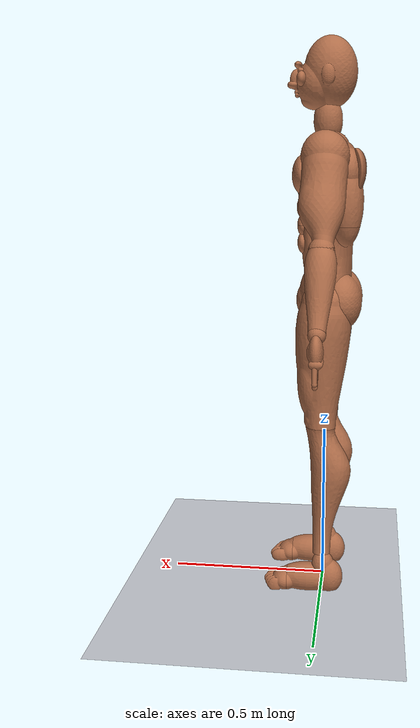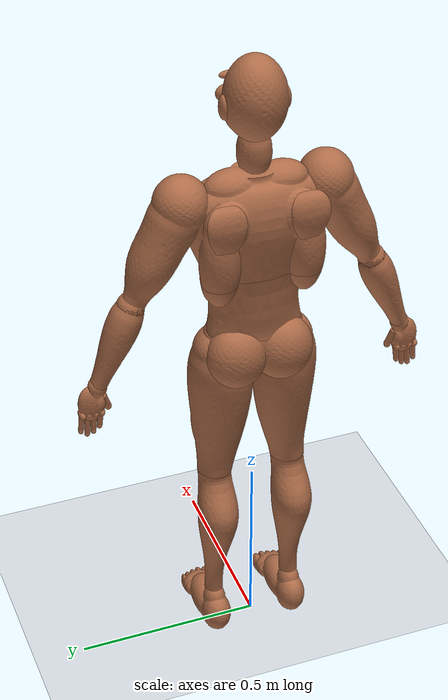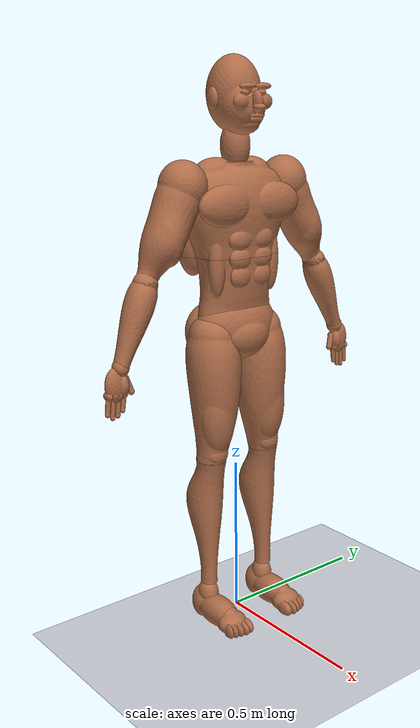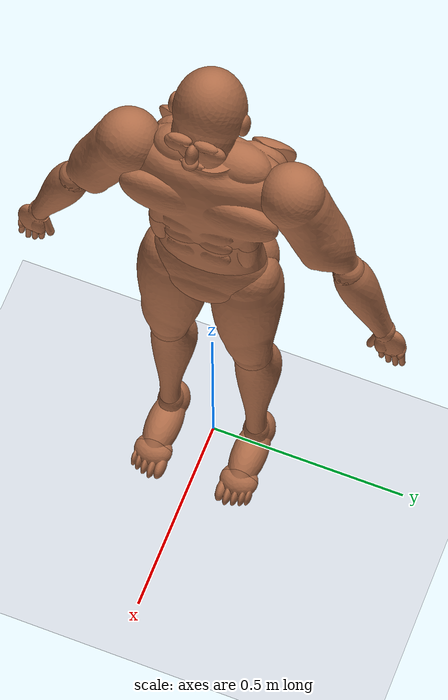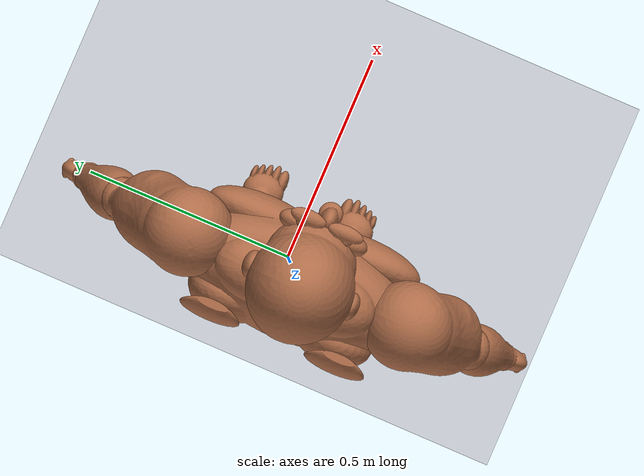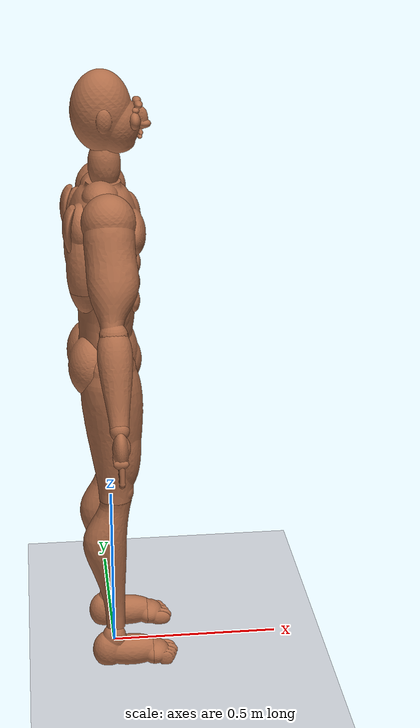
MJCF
<?xml version='1.0' encoding='utf-8'?>
<mujoco model="human_70kg_floating_fixed_hands">
  <compiler angle="radian" meshdir="../human_description/meshes" inertiafromgeom="false" autolimits="true" alignfree="false" />
  <option timestep=".001" gravity="0 0 -9.81" integrator="implicitfast" iterations="80" cone="elliptic" />
  <size memory="64M" />
  <visual>
    <global offwidth="1200" offheight="1200" />
    <headlight ambient=".35 .35 .35" diffuse=".7 .7 .7" />
  </visual>
  <asset>
    <mesh name="PelvisLink_visual" file="visual/PelvisLink.stl" maxhullvert="64" />
    <mesh name="TorsoLink_visual" file="visual/TorsoLink.stl" maxhullvert="64" />
    <mesh name="ChestLink_visual" file="visual/ChestLink.stl" maxhullvert="64" />
    <mesh name="HeadLink_visual" file="visual/HeadLink.stl" maxhullvert="64" />
    <mesh name="RightScapulaLink_visual" file="visual/RightScapulaLink.stl" maxhullvert="64" />
    <mesh name="RightUpperArmLink_visual" file="visual/RightUpperArmLink.stl" maxhullvert="64" />
    <mesh name="RightForearmLink_visual" file="visual/RightForearmLink.stl" maxhullvert="64" />
    <mesh name="RightHandLink_visual" file="visual/RightHandLink.stl" maxhullvert="64" />
    <mesh name="RightFinger1Link_visual" file="visual/RightFinger1Link.stl" maxhullvert="64" />
    <mesh name="RightFinger2Link_visual" file="visual/RightFinger2Link.stl" maxhullvert="64" />
    <mesh name="RightFinger3Link_visual" file="visual/RightFinger3Link.stl" maxhullvert="64" />
    <mesh name="RightFinger4Link_visual" file="visual/RightFinger4Link.stl" maxhullvert="64" />
    <mesh name="RightThumbLink_visual" file="visual/RightThumbLink.stl" maxhullvert="64" />
    <mesh name="LeftScapulaLink_visual" file="visual/LeftScapulaLink.stl" maxhullvert="64" />
    <mesh name="LeftUpperArmLink_visual" file="visual/LeftUpperArmLink.stl" maxhullvert="64" />
    <mesh name="LeftForearmLink_visual" file="visual/LeftForearmLink.stl" maxhullvert="64" />
    <mesh name="LeftHandLink_visual" file="visual/LeftHandLink.stl" maxhullvert="64" />
    <mesh name="LeftFinger1Link_visual" file="visual/LeftFinger1Link.stl" maxhullvert="64" />
    <mesh name="LeftFinger2Link_visual" file="visual/LeftFinger2Link.stl" maxhullvert="64" />
    <mesh name="LeftFinger3Link_visual" file="visual/LeftFinger3Link.stl" maxhullvert="64" />
    <mesh name="LeftFinger4Link_visual" file="visual/LeftFinger4Link.stl" maxhullvert="64" />
    <mesh name="LeftThumbLink_visual" file="visual/LeftThumbLink.stl" maxhullvert="64" />
    <mesh name="RightThighLink_visual" file="visual/RightThighLink.stl" maxhullvert="64" />
    <mesh name="RightShinLink_visual" file="visual/RightShinLink.stl" maxhullvert="64" />
    <mesh name="RightFootLink_visual" file="visual/RightFootLink.stl" maxhullvert="64" />
    <mesh name="RightForefootLink_visual" file="visual/RightForefootLink.stl" maxhullvert="64" />
    <mesh name="LeftThighLink_visual" file="visual/LeftThighLink.stl" maxhullvert="64" />
    <mesh name="LeftShinLink_visual" file="visual/LeftShinLink.stl" maxhullvert="64" />
    <mesh name="LeftFootLink_visual" file="visual/LeftFootLink.stl" maxhullvert="64" />
    <mesh name="LeftForefootLink_visual" file="visual/LeftForefootLink.stl" maxhullvert="64" />
  </asset>
  <worldbody>
    <light pos="3 0 4" dir="-1 0 -1" directional="true" />
    <geom name="floor" type="plane" size="4 4 .1" rgba=".82 .84 .87 1" friction=".9 .01 .001" condim="3" />
    <body name="PelvisLink" pos="0 0 0.955">
      <freejoint name="root_free" />
      <inertial pos="-0.0142817738051 -6.26780192099e-05 -0.0053618011294" mass="7.50597004144" fullinertia="0.0532680539413 0.0353649564087 0.0519159409818 -1.08002113482e-05 -0.00207626040272 5.8707106621e-06" />
      <geom name="PelvisLink_visual" type="mesh" mesh="PelvisLink_visual" contype="0" conaffinity="0" group="2" rgba="0.69 0.43 0.29 1" />
      <body name="TorsoLink" pos="-0 0 0.055">
        <joint name="WaistFlexJoint" type="hinge" pos="0 0 0" axis="-0 1 0" limited="true" range="-0.174532925199 0.349065850399" damping="0.5" solreflimit=".005 1" />
        <joint name="WaistSideJoint" type="hinge" pos="0 0 0" axis="-1 0 0" limited="true" range="-0.174532925199 0.174532925199" damping="0.5" solreflimit=".005 1" />
        <joint name="WaistTwistJoint" type="hinge" pos="0 0 0" axis="-0 0 1" limited="true" range="-0.261799387799 0.261799387799" damping="0.5" solreflimit=".005 1" />
        <inertial pos="-0.0026607943679 1.06911987735e-05 0.0761874542079" mass="6.85493860107" fullinertia="0.0535176987282 0.0351462548154 0.0436551774889 -5.5122512061e-06 0.000226826670738 2.21736329309e-05" />
        <geom name="TorsoLink_visual" type="mesh" mesh="TorsoLink_visual" contype="0" conaffinity="0" group="2" rgba="0.69 0.43 0.29 1" />
        <body name="ChestLink" pos="-0 0 0.165">
          <joint name="SpineFlexJoint" type="hinge" pos="0 0 0" axis="-0 1 0" limited="true" range="-0.261799387799 0.523598775598" damping="0.5" solreflimit=".005 1" />
          <joint name="SpineSideJoint" type="hinge" pos="0 0 0" axis="-1 0 0" limited="true" range="-0.261799387799 0.261799387799" damping="0.5" solreflimit=".005 1" />
          <joint name="SpineTwistJoint" type="hinge" pos="0 0 0" axis="-0 0 1" limited="true" range="-0.349065850399 0.349065850399" damping="0.5" solreflimit=".005 1" />
          <inertial pos="-0.00650743068671 -4.4700290033e-05 0.130277315974" mass="15.3304892989" fullinertia="0.20279957476 0.119044975514 0.166654142399 5.4164874078e-06 -0.00350930279241 1.03818847316e-05" />
          <geom name="ChestLink_visual" type="mesh" mesh="ChestLink_visual" contype="0" conaffinity="0" group="2" rgba="0.69 0.43 0.29 1" />
          <geom name="ChestLink_collision" type="box" group="3" rgba=".3 .6 .9 .2" friction=".8 .01 .001" condim="3" pos="-0.0035 0 0.1435" size="0.09 0.16 0.12" />
          <body name="HeadLink" pos="-0 0 0.285">
            <joint name="NeckFlexJoint" type="hinge" pos="0 0 0" axis="-0 1 0" limited="true" range="-0.698131700798 0.785398163397" damping="0.15" solreflimit=".005 1" />
            <joint name="NeckSideJoint" type="hinge" pos="0 0 0" axis="-1 0 0" limited="true" range="-0.610865238198 0.610865238198" damping="0.15" solreflimit=".005 1" />
            <joint name="NeckTwistJoint" type="hinge" pos="0 0 0" axis="-0 0 1" limited="true" range="-1.0471975512 1.0471975512" damping="0.15" solreflimit=".005 1" />
            <inertial pos="0.0061984111885 -1.43284100712e-05 0.154278999978" mass="4.76723836192" fullinertia="0.0279750211539 0.0306045906703 0.013973750605 3.2746347499e-06 0.00115444399811 4.756775342e-07" />
            <geom name="HeadLink_visual" type="mesh" mesh="HeadLink_visual" contype="0" conaffinity="0" group="2" rgba="0.69 0.43 0.29 1" />
          </body>
          <body name="RightScapulaLink" pos="-0 -0.035 0.235">
            <joint name="RightScapulaProtractionJoint" type="hinge" pos="0 0 0" axis="-0 0 1" limited="true" range="-0.261799387799 0.349065850399" damping="0.2" solreflimit=".005 1" />
            <joint name="RightScapulaElevationJoint" type="hinge" pos="0 0 0" axis="-1 0 0" limited="true" range="-0.174532925199 0.349065850399" damping="0.2" solreflimit=".005 1" />
            <inertial pos="-0.103141707132 -0.0731322130533 -0.0624934323668" mass="0.210303829432" fullinertia="0.00035308600672 0.000257196859628 0.000116668557687 -6.108984691e-07 -5.2820237728e-06 1.408451867e-07" />
            <geom name="RightScapulaLink_visual" type="mesh" mesh="RightScapulaLink_visual" contype="0" conaffinity="0" group="2" rgba="0.69 0.43 0.29 1" />
            <body name="RightUpperArmLink" pos="-0 -0.154 -0.025">
              <joint name="RightShoulderFlexJoint" type="hinge" pos="0 0 0" axis="-0 1 0" limited="true" range="-2.61799387799 0.698131700798" damping="0.2" solreflimit=".005 1" />
              <joint name="RightShoulderSideJoint" type="hinge" pos="0 0 0" axis="-1 0 0" limited="true" range="-0.471238898038 2.09439510239" damping="0.2" solreflimit=".005 1" />
              <joint name="RightShoulderTwistJoint" type="hinge" pos="0 0 0" axis="-0 0 1" limited="true" range="-1.0471975512 1.0471975512" damping="0.2" solreflimit=".005 1" />
              <inertial pos="0.00156558491313 -0.043814285918 -0.0846799829076" mass="1.8410920546" fullinertia="0.0188396892081 0.0157944227816 0.00681797887283 6.65540521581e-05 0.000146961884328 -0.00621140212628" />
              <geom name="RightUpperArmLink_visual" type="mesh" mesh="RightUpperArmLink_visual" contype="0" conaffinity="0" group="2" rgba="0.69 0.43 0.29 1" />
              <body name="RightForearmLink" pos="-0 -0.137 -0.265">
                <joint name="RightElbowFlexJoint" type="hinge" pos="0 0 0" axis="-0 1 0" limited="true" range="-2.53072741539 0" damping="0.2" solreflimit=".005 1" />
                <inertial pos="0.00180407752231 -0.033944135226 -0.0811716352873" mass="1.05005250263" fullinertia="0.00525151650926 0.00462890226509 0.00146953824344 3.15979344897e-05 8.56451891821e-05 -0.00159213978781" />
                <geom name="RightForearmLink_visual" type="mesh" mesh="RightForearmLink_visual" contype="0" conaffinity="0" group="2" rgba="0.69 0.43 0.29 1" />
                <body name="RightHandLink" pos="0.005 -0.094 -0.225">
                  <joint name="RightWristFlexJoint" type="hinge" pos="0 0 0" axis="-0 1 0" limited="true" range="-1.2217304764 1.0471975512" damping="0.03" solreflimit=".005 1" />
                  <joint name="RightWristSideJoint" type="hinge" pos="0 0 0" axis="-1 0 0" limited="true" range="-0.436332312999 0.436332312999" damping="0.03" solreflimit=".005 1" />
                  <inertial pos="0.00119464903421 -0.0118813065487 -0.037219167576" mass="0.312927623882" fullinertia="0.000404576093728 0.000340749490106 0.000138641215246 -1.9589883446e-06 4.3227352563e-06 -5.60134497423e-05" />
                  <geom name="RightHandLink_visual" type="mesh" mesh="RightHandLink_visual" contype="0" conaffinity="0" group="2" rgba="0.69 0.43 0.29 1" />
                  <body name="RightFinger1Link" pos="0.002 0.006 -0.077">
                    <inertial pos="4.7649559714e-09 -0.00261897411123 -0.025199361748" mass="0.0149865632318" fullinertia="3.8918987748e-06 3.8615178646e-06 4.842566605e-07 1.378e-13 1.3879e-12 -3.531389842e-07" />
                    <geom name="RightFinger1Link_visual" type="mesh" mesh="RightFinger1Link_visual" contype="0" conaffinity="0" group="2" rgba="0.69 0.43 0.29 1" />
                  </body>
                  <body name="RightFinger2Link" pos="0.002 -0.011 -0.077">
                    <inertial pos="3.4718274726e-09 -0.00256067111296 -0.0312861768239" mass="0.0186179802804" fullinertia="7.2633113038e-06 7.2250864033e-06 6.028896999e-07 1.496e-13 1.6395e-12 -5.440246172e-07" />
                    <geom name="RightFinger2Link_visual" type="mesh" mesh="RightFinger2Link_visual" contype="0" conaffinity="0" group="2" rgba="0.69 0.43 0.29 1" />
                  </body>
                  <body name="RightFinger3Link" pos="0.002 -0.028 -0.077">
                    <inertial pos="-2.4952508754e-09 -0.00254732132714 -0.0331586198832" mass="0.0197364939447" fullinertia="8.602505168e-06 8.5618916361e-06 6.393983256e-07 -2.838e-13 -1.2621e-12 -6.106123613e-07" />
                    <geom name="RightFinger3Link_visual" type="mesh" mesh="RightFinger3Link_visual" contype="0" conaffinity="0" group="2" rgba="0.69 0.43 0.29 1" />
                  </body>
                  <body name="RightFinger4Link" pos="0.002 -0.044 -0.077">
                    <inertial pos="-3.1910130976e-09 -0.00259327317443 -0.0275410208332" mass="0.0163825383032" fullinertia="5.0222144795e-06 4.9887988e-06 5.298835789e-07 -1.586e-13 -1.1309e-12 -4.219412442e-07" />
                    <geom name="RightFinger4Link_visual" type="mesh" mesh="RightFinger4Link_visual" contype="0" conaffinity="0" group="2" rgba="0.69 0.43 0.29 1" />
                  </body>
                  <body name="RightThumbLink" pos="0.001 0.011 -0.03">
                    <inertial pos="0.00368397274441 0.00892097176646 -0.022163508028" mass="0.0268692763816" fullinertia="7.0296306635e-06 6.4137794589e-06 2.3645197214e-06 -3.165789548e-07 7.914642135e-07 1.9105182671e-06" />
                    <geom name="RightThumbLink_visual" type="mesh" mesh="RightThumbLink_visual" contype="0" conaffinity="0" group="2" rgba="0.69 0.43 0.29 1" />
                  </body>
                </body>
              </body>
            </body>
          </body>
          <body name="LeftScapulaLink" pos="-0 0.035 0.235">
            <joint name="LeftScapulaProtractionJoint" type="hinge" pos="0 0 0" axis="-0 0 -1" limited="true" range="-0.261799387799 0.349065850399" damping="0.2" solreflimit=".005 1" />
            <joint name="LeftScapulaElevationJoint" type="hinge" pos="0 0 0" axis="1 0 0" limited="true" range="-0.174532925199 0.349065850399" damping="0.2" solreflimit=".005 1" />
            <inertial pos="-0.103141707132 0.0728677869467 -0.0624934323668" mass="0.210303829432" fullinertia="0.000353086006719 0.000257196859628 0.000116668557687 -6.108984691e-07 -5.2820237728e-06 1.408451867e-07" />
            <geom name="LeftScapulaLink_visual" type="mesh" mesh="LeftScapulaLink_visual" contype="0" conaffinity="0" group="2" rgba="0.69 0.43 0.29 1" />
            <body name="LeftUpperArmLink" pos="-0 0.154 -0.025">
              <joint name="LeftShoulderFlexJoint" type="hinge" pos="0 0 0" axis="-0 1 0" limited="true" range="-2.61799387799 0.698131700798" damping="0.2" solreflimit=".005 1" />
              <joint name="LeftShoulderSideJoint" type="hinge" pos="0 0 0" axis="-1 0 0" limited="true" range="-2.09439510239 0.471238898038" damping="0.2" solreflimit=".005 1" />
              <joint name="LeftShoulderTwistJoint" type="hinge" pos="0 0 0" axis="-0 0 1" limited="true" range="-1.0471975512 1.0471975512" damping="0.2" solreflimit=".005 1" />
              <inertial pos="0.0015524063318 0.0437869708414 -0.0846013603243" mass="1.8410920546" fullinertia="0.0188550010149 0.0158052640611 0.00681965717028 -6.6476325568e-05 0.000146874775774 0.00621831541832" />
              <geom name="LeftUpperArmLink_visual" type="mesh" mesh="LeftUpperArmLink_visual" contype="0" conaffinity="0" group="2" rgba="0.69 0.43 0.29 1" />
              <body name="LeftForearmLink" pos="-0 0.137 -0.265">
                <joint name="LeftElbowFlexJoint" type="hinge" pos="0 0 0" axis="-0 1 0" limited="true" range="-2.53072741539 0" damping="0.2" solreflimit=".005 1" />
                <inertial pos="0.00180229787039 0.0339553955902 -0.0811336633351" mass="1.05005250263" fullinertia="0.00525200151413 0.00462991604215 0.00146933853377 -3.15698709062e-05 8.56477770029e-05 0.00159203322787" />
                <geom name="LeftForearmLink_visual" type="mesh" mesh="LeftForearmLink_visual" contype="0" conaffinity="0" group="2" rgba="0.69 0.43 0.29 1" />
                <body name="LeftHandLink" pos="0.005 0.094 -0.225">
                  <joint name="LeftWristFlexJoint" type="hinge" pos="0 0 0" axis="-0 1 0" limited="true" range="-1.2217304764 1.0471975512" damping="0.03" solreflimit=".005 1" />
                  <joint name="LeftWristSideJoint" type="hinge" pos="0 0 0" axis="-1 0 0" limited="true" range="-0.436332312999 0.436332312999" damping="0.03" solreflimit=".005 1" />
                  <inertial pos="0.00142730048598 0.0046160986718 -0.0336190688308" mass="0.312927623882" fullinertia="0.000424645493359 0.00038812364228 0.000114847975658 2.0828942899e-06 6.726405571e-06 6.15380957445e-05" />
                  <geom name="LeftHandLink_visual" type="mesh" mesh="LeftHandLink_visual" contype="0" conaffinity="0" group="2" rgba="0.69 0.43 0.29 1" />
                  <body name="LeftFinger1Link" pos="0.002 -0.006 -0.077">
                    <inertial pos="-1.19089014717e-08 0.00261935075084 -0.025198925374" mass="0.0149865632318" fullinertia="3.8918444854e-06 3.8614213464e-06 4.842695309e-07 4.418e-13 -3.5857e-12 3.53251324e-07" />
                    <geom name="LeftFinger1Link_visual" type="mesh" mesh="LeftFinger1Link_visual" contype="0" conaffinity="0" group="2" rgba="0.69 0.43 0.29 1" />
                  </body>
                  <body name="LeftFinger2Link" pos="0.002 0.011 -0.077">
                    <inertial pos="-1.10488925561e-08 0.00256098166429 -0.0312859848073" mass="0.0186179802804" fullinertia="7.2632794826e-06 7.2250213904e-06 6.029051704e-07 5.942e-13 -5.8976e-12 5.441666974e-07" />
                    <geom name="LeftFinger2Link_visual" type="mesh" mesh="LeftFinger2Link_visual" contype="0" conaffinity="0" group="2" rgba="0.69 0.43 0.29 1" />
                  </body>
                  <body name="LeftFinger3Link" pos="0.002 0.028 -0.077">
                    <inertial pos="1.4405773929e-09 0.00254759244991 -0.0331580415247" mass="0.0197364939447" fullinertia="8.6023635497e-06 8.5617181317e-06 6.39413436e-07 -1.066e-13 8.076e-13 6.107583527e-07" />
                    <geom name="LeftFinger3Link_visual" type="mesh" mesh="LeftFinger3Link_visual" contype="0" conaffinity="0" group="2" rgba="0.69 0.43 0.29 1" />
                  </body>
                  <body name="LeftFinger4Link" pos="0.002 0.044 -0.077">
                    <inertial pos="-9.6065991288e-09 0.0025936437453 -0.0275407567504" mass="0.0163825383032" fullinertia="5.0221698883e-06 4.9887154397e-06 5.298988389e-07 3.695e-13 -3.4292e-12 4.220714282e-07" />
                    <geom name="LeftFinger4Link_visual" type="mesh" mesh="LeftFinger4Link_visual" contype="0" conaffinity="0" group="2" rgba="0.69 0.43 0.29 1" />
                  </body>
                  <body name="LeftThumbLink" pos="0.001 -0.011 -0.03">
                    <inertial pos="0.00368498681293 -0.00892096479845 -0.0221669503437" mass="0.0268692763816" fullinertia="7.029885546e-06 6.4147124429e-06 2.3643154154e-06 3.165678329e-07 7.917973957e-07 -1.9102093477e-06" />
                    <geom name="LeftThumbLink_visual" type="mesh" mesh="LeftThumbLink_visual" contype="0" conaffinity="0" group="2" rgba="0.69 0.43 0.29 1" />
                  </body>
                </body>
              </body>
            </body>
          </body>
        </body>
      </body>
      <body name="RightThighLink" pos="-0 -0.088 -0.02">
        <joint name="RightHipFlexJoint" type="hinge" pos="0 0 0" axis="-0 1 0" limited="true" range="-2.00712863979 0.349065850399" damping="0.5" solreflimit=".005 1" />
        <joint name="RightHipSideJoint" type="hinge" pos="0 0 0" axis="-1 0 0" limited="true" range="-0.261799387799 0.698131700798" damping="0.5" solreflimit=".005 1" />
        <joint name="RightHipTwistJoint" type="hinge" pos="0 0 0" axis="-0 0 1" limited="true" range="-0.698131700798 0.610865238198" damping="0.5" solreflimit=".005 1" />
        <inertial pos="0.00663699064236 -0.00263859687205 -0.145510173029" mass="10.1295064753" fullinertia="0.147472003321 0.147817553146 0.0295642131561 0.000551843686292 0.00474844579927 -0.00357071251755" />
        <geom name="RightThighLink_visual" type="mesh" mesh="RightThighLink_visual" contype="0" conaffinity="0" group="2" rgba="0.69 0.43 0.29 1" />
        <body name="RightShinLink" pos="0.008 -0.017 -0.395">
          <joint name="RightKneeFlexJoint" type="hinge" pos="0 0 0" axis="-0 1 0" limited="true" range="0 2.35619449019" damping="0.5" solreflimit=".005 1" />
          <inertial pos="-0.0207357914409 -0.00294136803239 -0.1530712715" mass="3.199159958" fullinertia="0.0384153793676 0.0392550589084 0.00435745921345 -1.80893843183e-05 -0.000881601881458 -0.000661883393229" />
          <geom name="RightShinLink_visual" type="mesh" mesh="RightShinLink_visual" contype="0" conaffinity="0" group="2" rgba="0.69 0.43 0.29 1" />
          <body name="RightFootLink" pos="-0.008 -0.008 -0.42">
            <joint name="RightAnkleFlexJoint" type="hinge" pos="0 0 0" axis="-0 1 0" limited="true" range="-0.349065850399 0.698131700798" damping="0.3" solreflimit=".005 1" />
            <joint name="RightAnkleSideJoint" type="hinge" pos="0 0 0" axis="-1 0 0" limited="true" range="-0.523598775598 0.261799387799" damping="0.3" solreflimit=".005 1" />
            <inertial pos="0.0214332806556 -1.49218615623e-05 -0.0760049032932" mass="0.754224891828" fullinertia="0.000864070878877 0.00219940285248 0.00196193900765 2.132988656e-07 0.000189215613795 1.92357028e-08" />
            <geom name="RightFootLink_visual" type="mesh" mesh="RightFootLink_visual" contype="0" conaffinity="0" group="2" rgba="0.69 0.43 0.29 1" />
            <geom name="RightFootLink_collision" type="box" group="3" rgba=".3 .6 .9 .2" friction=".8 .01 .001" condim="3" pos="0.0175 0 -0.11" size="0.0825 0.045 0.01" />
            <body name="RightForefootLink" pos="0.11 0 -0.085">
              <joint name="RightForefootJoint" type="hinge" pos="0 0 0" axis="-0 1 0" limited="true" range="-1.0471975512 0.349065850399" damping="0.05" solreflimit=".005 1" />
              <inertial pos="0.0281720518154 0.00154679138855 -0.0113797491982" mass="0.176821660499" fullinertia="0.000137852621358 9.72977148821e-05 0.000159258260542 -7.7352072227e-06 1.4552731534e-05 1.9076857561e-06" />
              <geom name="RightForefootLink_visual" type="mesh" mesh="RightForefootLink_visual" contype="0" conaffinity="0" group="2" rgba="0.69 0.43 0.29 1" />
              <geom name="RightForefootLink_collision" type="box" group="3" rgba=".3 .6 .9 .2" friction=".8 .01 .001" condim="3" pos="0.0425 0 -0.025" size="0.0325 0.045 0.01" />
            </body>
          </body>
        </body>
      </body>
      <body name="LeftThighLink" pos="-0 0.088 -0.02">
        <joint name="LeftHipFlexJoint" type="hinge" pos="0 0 0" axis="-0 1 0" limited="true" range="-2.00712863979 0.349065850399" damping="0.5" solreflimit=".005 1" />
        <joint name="LeftHipSideJoint" type="hinge" pos="0 0 0" axis="-1 0 0" limited="true" range="-0.698131700798 0.261799387799" damping="0.5" solreflimit=".005 1" />
        <joint name="LeftHipTwistJoint" type="hinge" pos="0 0 0" axis="-0 0 1" limited="true" range="-0.610865238198 0.698131700798" damping="0.5" solreflimit=".005 1" />
        <inertial pos="0.00664165704842 0.00266608090891 -0.14545040656" mass="10.1295064753" fullinertia="0.147482214824 0.147830852537 0.0295667321411 -0.000563356160663 0.0047313788779 0.00357397872525" />
        <geom name="LeftThighLink_visual" type="mesh" mesh="LeftThighLink_visual" contype="0" conaffinity="0" group="2" rgba="0.69 0.43 0.29 1" />
        <body name="LeftShinLink" pos="0.008 0.017 -0.395">
          <joint name="LeftKneeFlexJoint" type="hinge" pos="0 0 0" axis="-0 1 0" limited="true" range="0 2.35619449019" damping="0.5" solreflimit=".005 1" />
          <inertial pos="-0.0207380643036 0.0029038766642 -0.153076918528" mass="3.199159958" fullinertia="0.0384148648146 0.0392541280709 0.00435737559349 1.60932507214e-05 -0.000880745228888 0.000667508958949" />
          <geom name="LeftShinLink_visual" type="mesh" mesh="LeftShinLink_visual" contype="0" conaffinity="0" group="2" rgba="0.69 0.43 0.29 1" />
          <body name="LeftFootLink" pos="-0.008 0.008 -0.42">
            <joint name="LeftAnkleFlexJoint" type="hinge" pos="0 0 0" axis="-0 1 0" limited="true" range="-0.349065850399 0.698131700798" damping="0.3" solreflimit=".005 1" />
            <joint name="LeftAnkleSideJoint" type="hinge" pos="0 0 0" axis="-1 0 0" limited="true" range="-0.261799387799 0.523598775598" damping="0.3" solreflimit=".005 1" />
            <inertial pos="0.0214332806556 -1.49218615617e-05 -0.0760049032932" mass="0.754224891828" fullinertia="0.000864070878877 0.00219940285248 0.00196193900765 2.132988655e-07 0.000189215613795 1.92357029e-08" />
            <geom name="LeftFootLink_visual" type="mesh" mesh="LeftFootLink_visual" contype="0" conaffinity="0" group="2" rgba="0.69 0.43 0.29 1" />
            <geom name="LeftFootLink_collision" type="box" group="3" rgba=".3 .6 .9 .2" friction=".8 .01 .001" condim="3" pos="0.0175 0 -0.11" size="0.0825 0.045 0.01" />
            <body name="LeftForefootLink" pos="0.11 0 -0.085">
              <joint name="LeftForefootJoint" type="hinge" pos="0 0 0" axis="-0 1 0" limited="true" range="-1.0471975512 0.349065850399" damping="0.05" solreflimit=".005 1" />
              <inertial pos="0.0281783804054 -0.00156854333066 -0.0113824092038" mass="0.176821660499" fullinertia="0.000137825772585 9.73196128988e-05 0.000159271323176 7.784801241e-06 1.45552240844e-05 -1.9295393429e-06" />
              <geom name="LeftForefootLink_visual" type="mesh" mesh="LeftForefootLink_visual" contype="0" conaffinity="0" group="2" rgba="0.69 0.43 0.29 1" />
              <geom name="LeftForefootLink_collision" type="box" group="3" rgba=".3 .6 .9 .2" friction=".8 .01 .001" condim="3" pos="0.0425 0 -0.025" size="0.0325 0.045 0.01" />
            </body>
          </body>
        </body>
      </body>
    </body>
  </worldbody>
  <contact>
    <exclude body1="ChestLink" body2="HeadLink" />
    <exclude body1="ChestLink" body2="LeftScapulaLink" />
    <exclude body1="ChestLink" body2="LeftUpperArmLink" />
    <exclude body1="ChestLink" body2="PelvisLink" />
    <exclude body1="ChestLink" body2="RightScapulaLink" />
    <exclude body1="ChestLink" body2="RightUpperArmLink" />
    <exclude body1="ChestLink" body2="TorsoLink" />
    <exclude body1="HeadLink" body2="LeftScapulaLink" />
    <exclude body1="HeadLink" body2="RightScapulaLink" />
    <exclude body1="HeadLink" body2="TorsoLink" />
    <exclude body1="LeftFinger1Link" body2="LeftFinger2Link" />
    <exclude body1="LeftFinger1Link" body2="LeftFinger3Link" />
    <exclude body1="LeftFinger1Link" body2="LeftFinger4Link" />
    <exclude body1="LeftFinger1Link" body2="LeftForearmLink" />
    <exclude body1="LeftFinger1Link" body2="LeftHandLink" />
    <exclude body1="LeftFinger1Link" body2="LeftThumbLink" />
    <exclude body1="LeftFinger2Link" body2="LeftFinger3Link" />
    <exclude body1="LeftFinger2Link" body2="LeftFinger4Link" />
    <exclude body1="LeftFinger2Link" body2="LeftForearmLink" />
    <exclude body1="LeftFinger2Link" body2="LeftHandLink" />
    <exclude body1="LeftFinger2Link" body2="LeftThumbLink" />
    <exclude body1="LeftFinger3Link" body2="LeftFinger4Link" />
    <exclude body1="LeftFinger3Link" body2="LeftForearmLink" />
    <exclude body1="LeftFinger3Link" body2="LeftHandLink" />
    <exclude body1="LeftFinger3Link" body2="LeftThumbLink" />
    <exclude body1="LeftFinger4Link" body2="LeftForearmLink" />
    <exclude body1="LeftFinger4Link" body2="LeftHandLink" />
    <exclude body1="LeftFinger4Link" body2="LeftThumbLink" />
    <exclude body1="LeftFootLink" body2="LeftForefootLink" />
    <exclude body1="LeftFootLink" body2="LeftShinLink" />
    <exclude body1="LeftFootLink" body2="LeftThighLink" />
    <exclude body1="LeftForearmLink" body2="LeftHandLink" />
    <exclude body1="LeftForearmLink" body2="LeftScapulaLink" />
    <exclude body1="LeftForearmLink" body2="LeftThumbLink" />
    <exclude body1="LeftForearmLink" body2="LeftUpperArmLink" />
    <exclude body1="LeftForefootLink" body2="LeftShinLink" />
    <exclude body1="LeftHandLink" body2="LeftThumbLink" />
    <exclude body1="LeftHandLink" body2="LeftUpperArmLink" />
    <exclude body1="LeftScapulaLink" body2="LeftUpperArmLink" />
    <exclude body1="LeftScapulaLink" body2="RightScapulaLink" />
    <exclude body1="LeftScapulaLink" body2="TorsoLink" />
    <exclude body1="LeftShinLink" body2="LeftThighLink" />
    <exclude body1="LeftShinLink" body2="PelvisLink" />
    <exclude body1="LeftThighLink" body2="PelvisLink" />
    <exclude body1="LeftThighLink" body2="RightThighLink" />
    <exclude body1="LeftThighLink" body2="TorsoLink" />
    <exclude body1="PelvisLink" body2="RightShinLink" />
    <exclude body1="PelvisLink" body2="RightThighLink" />
    <exclude body1="PelvisLink" body2="TorsoLink" />
    <exclude body1="RightFinger1Link" body2="RightFinger2Link" />
    <exclude body1="RightFinger1Link" body2="RightFinger3Link" />
    <exclude body1="RightFinger1Link" body2="RightFinger4Link" />
    <exclude body1="RightFinger1Link" body2="RightForearmLink" />
    <exclude body1="RightFinger1Link" body2="RightHandLink" />
    <exclude body1="RightFinger1Link" body2="RightThumbLink" />
    <exclude body1="RightFinger2Link" body2="RightFinger3Link" />
    <exclude body1="RightFinger2Link" body2="RightFinger4Link" />
    <exclude body1="RightFinger2Link" body2="RightForearmLink" />
    <exclude body1="RightFinger2Link" body2="RightHandLink" />
    <exclude body1="RightFinger2Link" body2="RightThumbLink" />
    <exclude body1="RightFinger3Link" body2="RightFinger4Link" />
    <exclude body1="RightFinger3Link" body2="RightForearmLink" />
    <exclude body1="RightFinger3Link" body2="RightHandLink" />
    <exclude body1="RightFinger3Link" body2="RightThumbLink" />
    <exclude body1="RightFinger4Link" body2="RightForearmLink" />
    <exclude body1="RightFinger4Link" body2="RightHandLink" />
    <exclude body1="RightFinger4Link" body2="RightThumbLink" />
    <exclude body1="RightFootLink" body2="RightForefootLink" />
    <exclude body1="RightFootLink" body2="RightShinLink" />
    <exclude body1="RightFootLink" body2="RightThighLink" />
    <exclude body1="RightForearmLink" body2="RightHandLink" />
    <exclude body1="RightForearmLink" body2="RightScapulaLink" />
    <exclude body1="RightForearmLink" body2="RightThumbLink" />
    <exclude body1="RightForearmLink" body2="RightUpperArmLink" />
    <exclude body1="RightForefootLink" body2="RightShinLink" />
    <exclude body1="RightHandLink" body2="RightThumbLink" />
    <exclude body1="RightHandLink" body2="RightUpperArmLink" />
    <exclude body1="RightScapulaLink" body2="RightUpperArmLink" />
    <exclude body1="RightScapulaLink" body2="TorsoLink" />
    <exclude body1="RightShinLink" body2="RightThighLink" />
    <exclude body1="RightThighLink" body2="TorsoLink" />
  </contact>
  <actuator>
    <motor name="WaistFlexJoint_motor" joint="WaistFlexJoint" gear="1" ctrllimited="true" ctrlrange="-200 200" />
    <motor name="WaistSideJoint_motor" joint="WaistSideJoint" gear="1" ctrllimited="true" ctrlrange="-200 200" />
    <motor name="WaistTwistJoint_motor" joint="WaistTwistJoint" gear="1" ctrllimited="true" ctrlrange="-200 200" />
    <motor name="SpineFlexJoint_motor" joint="SpineFlexJoint" gear="1" ctrllimited="true" ctrlrange="-200 200" />
    <motor name="SpineSideJoint_motor" joint="SpineSideJoint" gear="1" ctrllimited="true" ctrlrange="-200 200" />
    <motor name="SpineTwistJoint_motor" joint="SpineTwistJoint" gear="1" ctrllimited="true" ctrlrange="-200 200" />
    <motor name="NeckFlexJoint_motor" joint="NeckFlexJoint" gear="1" ctrllimited="true" ctrlrange="-25 25" />
    <motor name="NeckSideJoint_motor" joint="NeckSideJoint" gear="1" ctrllimited="true" ctrlrange="-25 25" />
    <motor name="NeckTwistJoint_motor" joint="NeckTwistJoint" gear="1" ctrllimited="true" ctrlrange="-25 25" />
    <motor name="RightScapulaProtractionJoint_motor" joint="RightScapulaProtractionJoint" gear="1" ctrllimited="true" ctrlrange="-60 60" />
    <motor name="RightScapulaElevationJoint_motor" joint="RightScapulaElevationJoint" gear="1" ctrllimited="true" ctrlrange="-60 60" />
    <motor name="RightShoulderFlexJoint_motor" joint="RightShoulderFlexJoint" gear="1" ctrllimited="true" ctrlrange="-80 80" />
    <motor name="RightShoulderSideJoint_motor" joint="RightShoulderSideJoint" gear="1" ctrllimited="true" ctrlrange="-80 80" />
    <motor name="RightShoulderTwistJoint_motor" joint="RightShoulderTwistJoint" gear="1" ctrllimited="true" ctrlrange="-80 80" />
    <motor name="RightElbowFlexJoint_motor" joint="RightElbowFlexJoint" gear="1" ctrllimited="true" ctrlrange="-80 80" />
    <motor name="RightWristFlexJoint_motor" joint="RightWristFlexJoint" gear="1" ctrllimited="true" ctrlrange="-15 15" />
    <motor name="RightWristSideJoint_motor" joint="RightWristSideJoint" gear="1" ctrllimited="true" ctrlrange="-15 15" />
    <motor name="LeftScapulaProtractionJoint_motor" joint="LeftScapulaProtractionJoint" gear="1" ctrllimited="true" ctrlrange="-60 60" />
    <motor name="LeftScapulaElevationJoint_motor" joint="LeftScapulaElevationJoint" gear="1" ctrllimited="true" ctrlrange="-60 60" />
    <motor name="LeftShoulderFlexJoint_motor" joint="LeftShoulderFlexJoint" gear="1" ctrllimited="true" ctrlrange="-80 80" />
    <motor name="LeftShoulderSideJoint_motor" joint="LeftShoulderSideJoint" gear="1" ctrllimited="true" ctrlrange="-80 80" />
    <motor name="LeftShoulderTwistJoint_motor" joint="LeftShoulderTwistJoint" gear="1" ctrllimited="true" ctrlrange="-80 80" />
    <motor name="LeftElbowFlexJoint_motor" joint="LeftElbowFlexJoint" gear="1" ctrllimited="true" ctrlrange="-80 80" />
    <motor name="LeftWristFlexJoint_motor" joint="LeftWristFlexJoint" gear="1" ctrllimited="true" ctrlrange="-15 15" />
    <motor name="LeftWristSideJoint_motor" joint="LeftWristSideJoint" gear="1" ctrllimited="true" ctrlrange="-15 15" />
    <motor name="RightHipFlexJoint_motor" joint="RightHipFlexJoint" gear="1" ctrllimited="true" ctrlrange="-200 200" />
    <motor name="RightHipSideJoint_motor" joint="RightHipSideJoint" gear="1" ctrllimited="true" ctrlrange="-200 200" />
    <motor name="RightHipTwistJoint_motor" joint="RightHipTwistJoint" gear="1" ctrllimited="true" ctrlrange="-200 200" />
    <motor name="RightKneeFlexJoint_motor" joint="RightKneeFlexJoint" gear="1" ctrllimited="true" ctrlrange="-200 200" />
    <motor name="RightAnkleFlexJoint_motor" joint="RightAnkleFlexJoint" gear="1" ctrllimited="true" ctrlrange="-120 120" />
    <motor name="RightAnkleSideJoint_motor" joint="RightAnkleSideJoint" gear="1" ctrllimited="true" ctrlrange="-120 120" />
    <motor name="RightForefootJoint_motor" joint="RightForefootJoint" gear="1" ctrllimited="true" ctrlrange="-25 25" />
    <motor name="LeftHipFlexJoint_motor" joint="LeftHipFlexJoint" gear="1" ctrllimited="true" ctrlrange="-200 200" />
    <motor name="LeftHipSideJoint_motor" joint="LeftHipSideJoint" gear="1" ctrllimited="true" ctrlrange="-200 200" />
    <motor name="LeftHipTwistJoint_motor" joint="LeftHipTwistJoint" gear="1" ctrllimited="true" ctrlrange="-200 200" />
    <motor name="LeftKneeFlexJoint_motor" joint="LeftKneeFlexJoint" gear="1" ctrllimited="true" ctrlrange="-200 200" />
    <motor name="LeftAnkleFlexJoint_motor" joint="LeftAnkleFlexJoint" gear="1" ctrllimited="true" ctrlrange="-120 120" />
    <motor name="LeftAnkleSideJoint_motor" joint="LeftAnkleSideJoint" gear="1" ctrllimited="true" ctrlrange="-120 120" />
    <motor name="LeftForefootJoint_motor" joint="LeftForefootJoint" gear="1" ctrllimited="true" ctrlrange="-25 25" />
  </actuator>
  <keyframe>
    <key name="neutral" qpos="0 0 0.955 1 0 0 0 0 0 0 0 0 0 0 0 0 0 0 0 0 0 0 0 0 0 0 0 0 0 0 0 0 0 0 0 0 0 0 0 0 0 0 0 0 0 0" ctrl="0 0 0 0 0 0 0 0 0 0 0 0 0 0 0 0 0 0 0 0 0 0 0 0 0 0 0 0 0 0 0 0 0 0 0 0 0 0 0" />
  </keyframe>
</mujoco>
